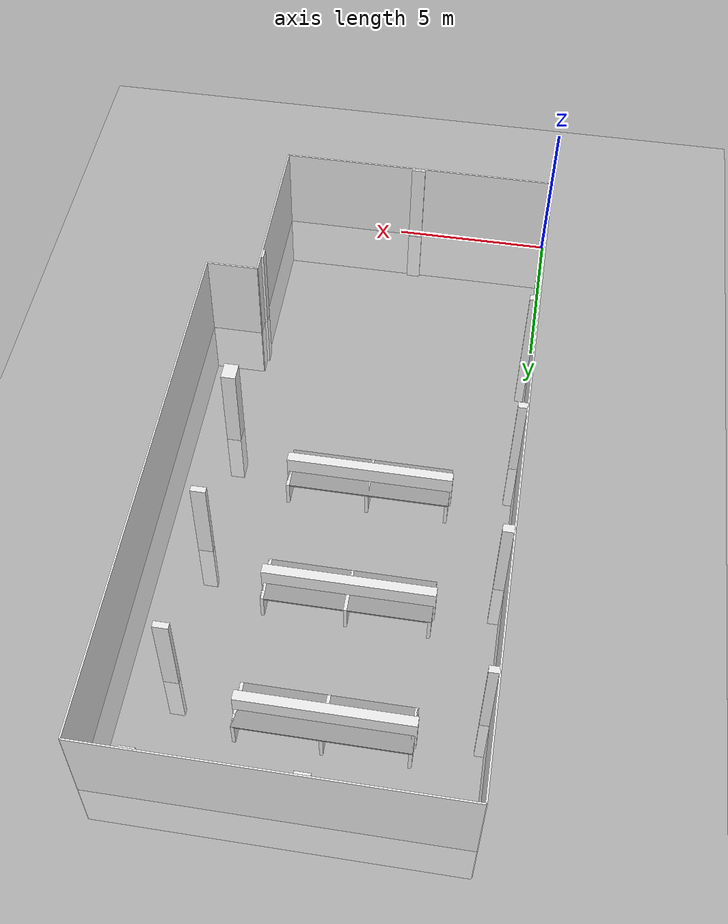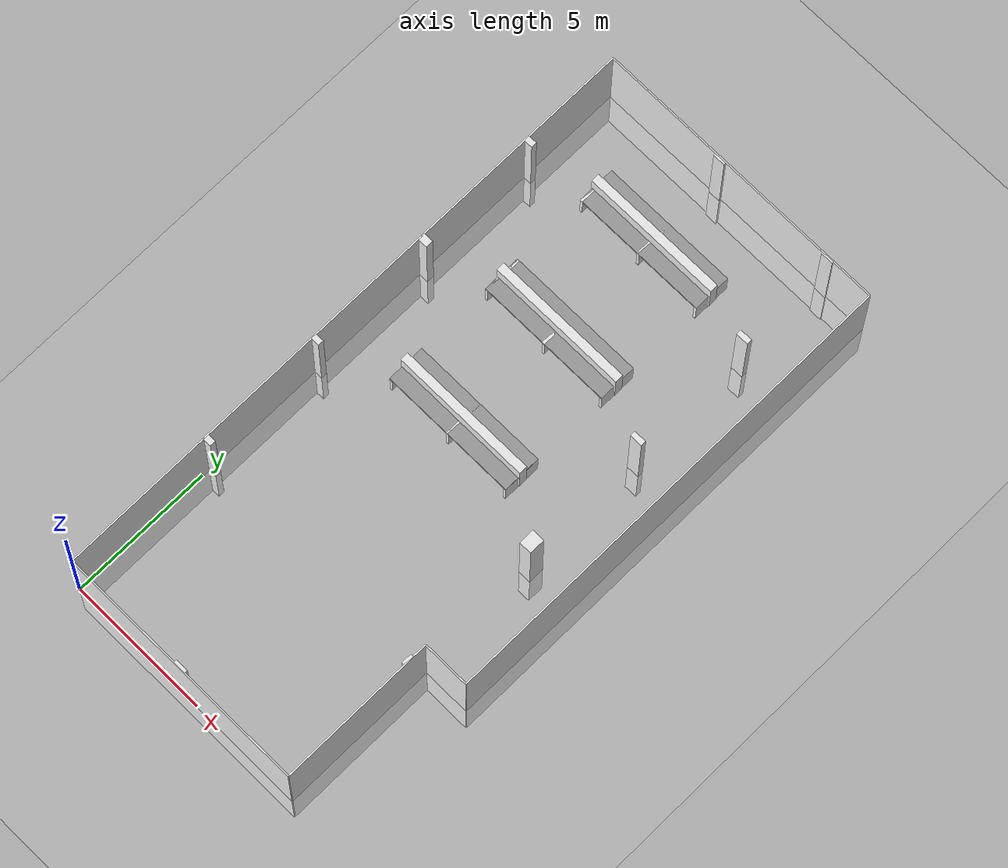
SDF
<sdf version="1.5">
 <world name="default">
  <physics name="default_physics" default="0" type="ode">
   <gravity>0 0 -9.8066</gravity>
   <ode>
    <solver>
     <type>quick</type>
     <iters>10</iters>
     <sor>1.3</sor>
     <use_dynamic_moi_rescaling>0</use_dynamic_moi_rescaling>
    </solver>
    <constraints>
     <cfm>0</cfm>
     <erp>0.2</erp>
     <contact_max_correcting_vel>1000</contact_max_correcting_vel>
     <contact_surface_layer>0.001</contact_surface_layer>
    </constraints>
   </ode>
   <max_step_size>0.004</max_step_size>
   <real_time_factor>1</real_time_factor>
   <real_time_update_rate>250</real_time_update_rate>
   <magnetic_field>6.0e-06 2.3e-05 -4.2e-05</magnetic_field>
  </physics>
  <GUI name="default_gri" default="0" type="ode"><grid>45 1.0 0 0.0150</grid></GUI>
  <scene><shadows>true</shadows></scene>
  <light name="sun" type="directional">
   <pose>0 0 10000 0.4 0.2 0</pose>
   <diffuse>1 1 1 1</diffuse>
   <specular>0.6 0.6 0.6 1</specular>
   <direction>0.1 0.1 -0.9</direction>
   <attenuation>
    <range>20</range>
    <constant>0.5</constant>
    <linear>0.01</linear>
    <quadratic>0.001</quadratic>
   </attenuation>
  </light>
  <include><uri>https://fuel.gazebosim.org/1.0/OpenRobotics/models/Ground Plane</uri></include>
  <model name="wall"><include><uri>model://wall-laser</uri></include></model>
  <model name="columns"><include><uri>model://columns-laser</uri></include></model>
  <model name="labBenchs"><include><uri>model://labBench-laser</uri></include></model>
 </world>
</sdf>

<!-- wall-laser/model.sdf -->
<sdf version="1.5">
    <model name="walls">
        <static>true</static>

        <link name="wall_900_hori">
            <pose>4.5 0 0.5 0 0 1.5707</pose>
            <static>true</static>
            <inertial>
                <mass>1.0</mass>
                <inertia>
                    <!-- inertias are tricky to compute -->
                    <ixx>1</ixx> <!-- for a box: ixx = 0.083 * mass * (y*y + z*z) -->
                    <ixy>0</ixy> <!-- for a box: ixy = 0 -->
                    <ixz>0</ixz> <!-- for a box: ixz = 0 -->
                    <iyy>1</iyy> <!-- for a box: iyy = 0.083 * mass * (x*x + z*z) -->
                    <iyz>0</iyz> <!-- for a box: iyz = 0 -->
                    <izz>1</izz> <!-- for a box: izz = 0.083 * mass * (x*x + y*y) -->
                </inertia>
            </inertial>
            <collision name="collision">
                <geometry>
                    <box>
                        <size>0.05 9 5</size>
                    </box>
                </geometry>
            </collision>
            <visual name="visual">
                <geometry>
                    <box>
                        <size>0.05 9 5</size>
                    </box>
                </geometry>
                <material>
                    <script>
                        <uri>file://media/materials/scripts/gazebo.material</uri>
                        <name>Gazebo/White</name>
                    </script>
                </material>
            </visual>
        </link>

        <link name="wall_550_verti">
            <pose>9 2.75 0.5 0 0 0</pose>
            <static>true</static>
            <inertial>
                <mass>1.0</mass>
                <inertia>
                    <!-- inertias are tricky to compute -->
                    <ixx>1</ixx> <!-- for a box: ixx = 0.083 * mass * (y*y + z*z) -->
                    <ixy>0</ixy> <!-- for a box: ixy = 0 -->
                    <ixz>0</ixz> <!-- for a box: ixz = 0 -->
                    <iyy>1</iyy> <!-- for a box: iyy = 0.083 * mass * (x*x + z*z) -->
                    <iyz>0</iyz> <!-- for a box: iyz = 0 -->
                    <izz>1</izz> <!-- for a box: izz = 0.083 * mass * (x*x + y*y) -->
                </inertia>
            </inertial>
            <collision name="collision">
                <geometry>
                    <box>
                        <size>0.05 5.5 5</size>
                    </box>
                </geometry>
            </collision>
            <visual name="visual">
                <geometry>
                    <box>
                        <size>0.05 5.5 5</size>
                    </box>
                </geometry>
                <material>
                    <script>
                        <uri>file://media/materials/scripts/gazebo.material</uri>
                        <name>Gazebo/White</name>
                    </script>
                </material>
            </visual>
        </link>

        <link name="wall_164_hori">
            <pose>9.8225 5.5 0.5 0 0 1.5707</pose>
            <static>true</static>
            <inertial>
                <mass>1.0</mass>
                <inertia>
                    <!-- inertias are tricky to compute -->
                    <ixx>1</ixx> <!-- for a box: ixx = 0.083 * mass * (y*y + z*z) -->
                    <ixy>0</ixy> <!-- for a box: ixy = 0 -->
                    <ixz>0</ixz> <!-- for a box: ixz = 0 -->
                    <iyy>1</iyy> <!-- for a box: iyy = 0.083 * mass * (x*x + z*z) -->
                    <iyz>0</iyz> <!-- for a box: iyz = 0 -->
                    <izz>1</izz> <!-- for a box: izz = 0.083 * mass * (x*x + y*y) -->
                </inertia>
            </inertial>
            <collision name="collision">
                <geometry>
                    <box>
                        <size>0.05 1.645 5</size>
                    </box>
                </geometry>
            </collision>
            <visual name="visual">
                <geometry>
                    <box>
                        <size>0.05 1.645 5</size>
                    </box>
                </geometry>
                <material>
                    <script>
                        <uri>file://media/materials/scripts/gazebo.material</uri>
                        <name>Gazebo/White</name>
                    </script>
                </material>
            </visual>
        </link>

        <link name="wall_1678_verti">
            <pose>10.645 13.8925 0.5 0 0 0</pose>
            <static>true</static>
            <inertial>
                <mass>1.0</mass>
                <inertia>
                    <!-- inertias are tricky to compute -->
                    <ixx>1</ixx> <!-- for a box: ixx = 0.083 * mass * (y*y + z*z) -->
                    <ixy>0</ixy> <!-- for a box: ixy = 0 -->
                    <ixz>0</ixz> <!-- for a box: ixz = 0 -->
                    <iyy>1</iyy> <!-- for a box: iyy = 0.083 * mass * (x*x + z*z) -->
                    <iyz>0</iyz> <!-- for a box: iyz = 0 -->
                    <izz>1</izz> <!-- for a box: izz = 0.083 * mass * (x*x + y*y) -->
                </inertia>
            </inertial>
            <collision name="collision">
                <geometry>
                    <box>
                        <size>0.05 16.785 5</size>
                    </box>
                </geometry>
            </collision>
            <visual name="visual">
                <geometry>
                    <box>
                        <size>0.05 16.785 5</size>
                    </box>
                </geometry>
                <material>
                    <script>
                        <uri>file://media/materials/scripts/gazebo.material</uri>
                        <name>Gazebo/White</name>
                    </script>
                </material>
            </visual>
        </link>

        <link name="wall_1064_hori">
            <pose>5.3225 22.285 0.5 0 0 1.5707</pose>
            <static>true</static>
            <inertial>
                <mass>1.0</mass>
                <inertia>
                    <!-- inertias are tricky to compute -->
                    <ixx>1</ixx> <!-- for a box: ixx = 0.083 * mass * (y*y + z*z) -->
                    <ixy>0</ixy> <!-- for a box: ixy = 0 -->
                    <ixz>0</ixz> <!-- for a box: ixz = 0 -->
                    <iyy>1</iyy> <!-- for a box: iyy = 0.083 * mass * (x*x + z*z) -->
                    <iyz>0</iyz> <!-- for a box: iyz = 0 -->
                    <izz>1</izz> <!-- for a box: izz = 0.083 * mass * (x*x + y*y) -->
                </inertia>
            </inertial>
            <collision name="collision">
                <geometry>
                    <box>
                        <size>0.05 10.645 5</size>
                    </box>
                </geometry>
            </collision>
            <visual name="visual">
                <geometry>
                    <box>
                        <size>0.05 10.645 5</size>
                    </box>
                </geometry>
                <material>
                    <script>
                        <uri>file://media/materials/scripts/gazebo.material</uri>
                        <name>Gazebo/White</name>
                    </script>
                </material>
            </visual>
        </link>

        <link name="wall_2228_verti">
            <pose>0 11.1425 0.5 0 0 0</pose>
            <static>true</static>
            <inertial>
                <mass>1.0</mass>
                <inertia>
                    <!-- inertias are tricky to compute -->
                    <ixx>1</ixx> <!-- for a box: ixx = 0.083 * mass * (y*y + z*z) -->
                    <ixy>0</ixy> <!-- for a box: ixy = 0 -->
                    <ixz>0</ixz> <!-- for a box: ixz = 0 -->
                    <iyy>1</iyy> <!-- for a box: iyy = 0.083 * mass * (x*x + z*z) -->
                    <iyz>0</iyz> <!-- for a box: iyz = 0 -->
                    <izz>1</izz> <!-- for a box: izz = 0.083 * mass * (x*x + y*y) -->
                </inertia>
            </inertial>
            <collision name="collision">
                <geometry>
                    <box>
                        <size>0.05 22.285 5</size>
                    </box>
                </geometry>
            </collision>
            <visual name="visual">
                <geometry>
                    <box>
                        <size>0.05 22.285 5</size>
                    </box>
                </geometry>
                <material>
                    <script>
                        <uri>file://media/materials/scripts/gazebo.material</uri>
                        <name>Gazebo/White</name>
                    </script>
                </material>
            </visual>
        </link>

    </model>
</sdf>

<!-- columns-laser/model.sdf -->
<sdf version="1.5">
    <model name="columns">
        <static>true</static>

        <link name="column_1_hori">
            <pose>4.5 0.055 0.5 0 0 1.5707</pose>
            <static>true</static>
            <inertial>
                <mass>1.0</mass>
                <inertia>
                    <!-- inertias are tricky to compute -->
                    <ixx>1</ixx> <!-- for a box: ixx = 0.083 * mass * (y*y + z*z) -->
                    <ixy>0</ixy> <!-- for a box: ixy = 0 -->
                    <ixz>0</ixz> <!-- for a box: ixz = 0 -->
                    <iyy>1</iyy> <!-- for a box: iyy = 0.083 * mass * (x*x + z*z) -->
                    <iyz>0</iyz> <!-- for a box: iyz = 0 -->
                    <izz>1</izz> <!-- for a box: izz = 0.083 * mass * (x*x + y*y) -->
                </inertia>
            </inertial>
            <collision name="collision">
                <geometry>
                    <box>
                        <size>0.11 0.45 5</size>
                    </box>
                </geometry>
            </collision>
            <visual name="visual">
                <geometry>
                    <box>
                        <size>0.11 0.45 5</size>
                    </box>
                </geometry>
                <material>
                    <script>
                        <uri>file://media/materials/scripts/gazebo.material</uri>
                        <name>Gazebo/White</name>
                    </script>
                </material>
            </visual>
        </link>

        <link name="column_2_verti">
            <pose>8.95 4.82 0.5 0 0 0</pose> <!-- corrigir posicao y -->
            <static>true</static>
            <inertial>
                <mass>1.0</mass>
                <inertia>
                    <!-- inertias are tricky to compute -->
                    <ixx>1</ixx> <!-- for a box: ixx = 0.083 * mass * (y*y + z*z) -->
                    <ixy>0</ixy> <!-- for a box: ixy = 0 -->
                    <ixz>0</ixz> <!-- for a box: ixz = 0 -->
                    <iyy>1</iyy> <!-- for a box: iyy = 0.083 * mass * (x*x + z*z) -->
                    <iyz>0</iyz> <!-- for a box: iyz = 0 -->
                    <izz>1</izz> <!-- for a box: izz = 0.083 * mass * (x*x + y*y) -->
                </inertia>
            </inertial>
            <collision name="collision">
                <geometry>
                    <box>
                        <size>0.1 0.36 5</size>
                    </box>
                </geometry>
            </collision>
            <visual name="visual">
                <geometry>
                    <box>
                        <size>0.1 0.36 5</size>
                    </box>
                </geometry>
                <material>
                    <script>
                        <uri>file://media/materials/scripts/gazebo.material</uri>
                        <name>Gazebo/White</name>
                    </script>
                </material>
            </visual>
        </link>

        <link name="column_3_hori">
            <pose>8.9425 22.25 0.5 0 0 1.5707</pose>
            <static>true</static>
            <inertial>
                <mass>1.0</mass>
                <inertia>
                    <!-- inertias are tricky to compute -->
                    <ixx>1</ixx> <!-- for a box: ixx = 0.083 * mass * (y*y + z*z) -->
                    <ixy>0</ixy> <!-- for a box: ixy = 0 -->
                    <ixz>0</ixz> <!-- for a box: ixz = 0 -->
                    <iyy>1</iyy> <!-- for a box: iyy = 0.083 * mass * (x*x + z*z) -->
                    <iyz>0</iyz> <!-- for a box: iyz = 0 -->
                    <izz>1</izz> <!-- for a box: izz = 0.083 * mass * (x*x + y*y) -->
                </inertia>
            </inertial>
            <collision name="collision">
                <geometry>
                    <box>
                        <size>0.07 0.445 5</size>
                    </box>
                </geometry>
            </collision>
            <visual name="visual">
                <geometry>
                    <box>
                        <size>0.07 0.445 5</size>
                    </box>
                </geometry>
                <material>
                    <script>
                        <uri>file://media/materials/scripts/gazebo.material</uri>
                        <name>Gazebo/White</name>
                    </script>
                </material>
            </visual>
        </link>

        <link name="column_4_hori">
            <pose>4.5225 22.235 0.5 0 0 1.5707</pose>
            <static>true</static>
            <inertial>
                <mass>1.0</mass>
                <inertia>
                    <!-- inertias are tricky to compute -->
                    <ixx>1</ixx> <!-- for a box: ixx = 0.083 * mass * (y*y + z*z) -->
                    <ixy>0</ixy> <!-- for a box: ixy = 0 -->
                    <ixz>0</ixz> <!-- for a box: ixz = 0 -->
                    <iyy>1</iyy> <!-- for a box: iyy = 0.083 * mass * (x*x + z*z) -->
                    <iyz>0</iyz> <!-- for a box: iyz = 0 -->
                    <izz>1</izz> <!-- for a box: izz = 0.083 * mass * (x*x + y*y) -->
                </inertia>
            </inertial>
            <collision name="collision">
                <geometry>
                    <box>
                        <size>0.1 0.435 5</size>
                    </box>
                </geometry>
            </collision>
            <visual name="visual">
                <geometry>
                    <box>
                        <size>0.1 0.435 5</size>
                    </box>
                </geometry>
                <material>
                    <script>
                        <uri>file://media/materials/scripts/gazebo.material</uri>
                        <name>Gazebo/White</name>
                    </script>
                </material>
            </visual>
        </link>

        <link name="column_8_verti">
            <pose>0.15 5.3645 0.5 0 0 0</pose>
            <static>true</static>
            <inertial>
                <mass>1.0</mass>
                <inertia>
                    <!-- inertias are tricky to compute -->
                    <ixx>1</ixx> <!-- for a box: ixx = 0.083 * mass * (y*y + z*z) -->
                    <ixy>0</ixy> <!-- for a box: ixy = 0 -->
                    <ixz>0</ixz> <!-- for a box: ixz = 0 -->
                    <iyy>1</iyy> <!-- for a box: iyy = 0.083 * mass * (x*x + z*z) -->
                    <iyz>0</iyz> <!-- for a box: iyz = 0 -->
                    <izz>1</izz> <!-- for a box: izz = 0.083 * mass * (x*x + y*y) -->
                </inertia>
            </inertial>
            <collision name="collision">
                <geometry>
                    <box>
                        <size>0.3 0.205 5</size>
                    </box>
                </geometry>
            </collision>
            <visual name="visual">
                <geometry>
                    <box>
                        <size>0.3 0.205 5</size>
                    </box>
                </geometry>
                <material>
                    <script>
                        <uri>file://media/materials/scripts/gazebo.material</uri>
                        <name>Gazebo/White</name>
                    </script>
                </material>
            </visual>
        </link>

        <link name="column_7_verti">
            <pose>0.15 9.764 0.5 0 0 0</pose>
            <static>true</static>
            <inertial>
                <mass>1.0</mass>
                <inertia>
                    <!-- inertias are tricky to compute -->
                    <ixx>1</ixx> <!-- for a box: ixx = 0.083 * mass * (y*y + z*z) -->
                    <ixy>0</ixy> <!-- for a box: ixy = 0 -->
                    <ixz>0</ixz> <!-- for a box: ixz = 0 -->
                    <iyy>1</iyy> <!-- for a box: iyy = 0.083 * mass * (x*x + z*z) -->
                    <iyz>0</iyz> <!-- for a box: iyz = 0 -->
                    <izz>1</izz> <!-- for a box: izz = 0.083 * mass * (x*x + y*y) -->
                </inertia>
            </inertial>
            <collision name="collision">
                <geometry>
                    <box>
                        <size>0.3 0.21 5</size>
                    </box>
                </geometry>
            </collision>
            <visual name="visual">
                <geometry>
                    <box>
                        <size>0.3 0.21 5</size>
                    </box>
                </geometry>
                <material>
                    <script>
                        <uri>file://media/materials/scripts/gazebo.material</uri>
                        <name>Gazebo/White</name>
                    </script>
                </material>
            </visual>
        </link>

        <link name="column_6_verti">
            <pose>0.175 14.202 0.5 0 0 0</pose>
            <static>true</static>
            <inertial>
                <mass>1.0</mass>
                <inertia>
                    <!-- inertias are tricky to compute -->
                    <ixx>1</ixx> <!-- for a box: ixx = 0.083 * mass * (y*y + z*z) -->
                    <ixy>0</ixy> <!-- for a box: ixy = 0 -->
                    <ixz>0</ixz> <!-- for a box: ixz = 0 -->
                    <iyy>1</iyy> <!-- for a box: iyy = 0.083 * mass * (x*x + z*z) -->
                    <iyz>0</iyz> <!-- for a box: iyz = 0 -->
                    <izz>1</izz> <!-- for a box: izz = 0.083 * mass * (x*x + y*y) -->
                </inertia>
            </inertial>
            <collision name="collision">
                <geometry>
                    <box>
                        <size>0.35 0.26 5</size>
                    </box>
                </geometry>
            </collision>
            <visual name="visual">
                <geometry>
                    <box>
                        <size>0.35 0.26 5</size>
                    </box>
                </geometry>
                <material>
                    <script>
                        <uri>file://media/materials/scripts/gazebo.material</uri>
                        <name>Gazebo/White</name>
                    </script>
                </material>
            </visual>
        </link>

        <link name="column_5_verti">
            <pose>0.1525 18.6245 0.5 0 0 0</pose>
            <static>true</static>
            <inertial>
                <mass>1.0</mass>
                <inertia>
                    <!-- inertias are tricky to compute -->
                    <ixx>1</ixx> <!-- for a box: ixx = 0.083 * mass * (y*y + z*z) -->
                    <ixy>0</ixy> <!-- for a box: ixy = 0 -->
                    <ixz>0</ixz> <!-- for a box: ixz = 0 -->
                    <iyy>1</iyy> <!-- for a box: iyy = 0.083 * mass * (x*x + z*z) -->
                    <iyz>0</iyz> <!-- for a box: iyz = 0 -->
                    <izz>1</izz> <!-- for a box: izz = 0.083 * mass * (x*x + y*y) -->
                </inertia>
            </inertial>
            <collision name="collision">
                <geometry>
                    <box>
                        <size>0.305 0.205 5</size>
                    </box>
                </geometry>
            </collision>
            <visual name="visual">
                <geometry>
                    <box>
                        <size>0.305 0.205 5</size>
                    </box>
                </geometry>
                <material>
                    <script>
                        <uri>file://media/materials/scripts/gazebo.material</uri>
                        <name>Gazebo/White</name>
                    </script>
                </material>
            </visual>
        </link>

        <link name="obj8">
            <pose>8.936 18.72 0.5 0 0 0</pose>
            <static>true</static>
            <inertial>
                <mass>1.0</mass>
                <inertia>
                    <!-- inertias are tricky to compute -->
                    <ixx>1</ixx> <!-- for a box: ixx = 0.083 * mass * (y*y + z*z) -->
                    <ixy>0</ixy> <!-- for a box: ixy = 0 -->
                    <ixz>0</ixz> <!-- for a box: ixz = 0 -->
                    <iyy>1</iyy> <!-- for a box: iyy = 0.083 * mass * (x*x + z*z) -->
                    <iyz>0</iyz> <!-- for a box: iyz = 0 -->
                    <izz>1</izz> <!-- for a box: izz = 0.083 * mass * (x*x + y*y) -->
                </inertia>
            </inertial>
            <collision name="collision">
                <geometry>
                    <box>
                        <size>0.45 0.19 5</size>
                    </box>
                </geometry>
            </collision>
            <visual name="visual">
                <geometry>
                    <box>
                        <size>0.45 0.19 5</size>
                    </box>
                </geometry>
                <material>
                    <script>
                        <uri>file://media/materials/scripts/gazebo.material</uri>
                        <name>Gazebo/White</name>
                    </script>
                </material>
            </visual>
        </link>

        <link name="obj9">
            <pose>8.936 14.275 0.5 0 0 0</pose>
            <static>true</static>
            <inertial>
                <mass>1.0</mass>
                <inertia>
                    <!-- inertias are tricky to compute -->
                    <ixx>1</ixx> <!-- for a box: ixx = 0.083 * mass * (y*y + z*z) -->
                    <ixy>0</ixy> <!-- for a box: ixy = 0 -->
                    <ixz>0</ixz> <!-- for a box: ixz = 0 -->
                    <iyy>1</iyy> <!-- for a box: iyy = 0.083 * mass * (x*x + z*z) -->
                    <iyz>0</iyz> <!-- for a box: iyz = 0 -->
                    <izz>1</izz> <!-- for a box: izz = 0.083 * mass * (x*x + y*y) -->
                </inertia>
            </inertial>
            <collision name="collision">
                <geometry>
                    <box>
                        <size>0.45 0.19 5</size>
                    </box>
                </geometry>
            </collision>
            <visual name="visual">
                <geometry>
                    <box>
                        <size>0.45 0.19 5</size>
                    </box>
                </geometry>
                <material>
                    <script>
                        <uri>file://media/materials/scripts/gazebo.material</uri>
                        <name>Gazebo/White</name>
                    </script>
                </material>
            </visual>
        </link>

        <link name="obj10">
            <pose>8.9695 9.8545 0.5 0 0 0</pose>
            <static>true</static>
            <inertial>
                <mass>1.0</mass>
                <inertia>
                    <!-- inertias are tricky to compute -->
                    <ixx>1</ixx> <!-- for a box: ixx = 0.083 * mass * (y*y + z*z) -->
                    <ixy>0</ixy> <!-- for a box: ixy = 0 -->
                    <ixz>0</ixz> <!-- for a box: ixz = 0 -->
                    <iyy>1</iyy> <!-- for a box: iyy = 0.083 * mass * (x*x + z*z) -->
                    <iyz>0</iyz> <!-- for a box: iyz = 0 -->
                    <izz>1</izz> <!-- for a box: izz = 0.083 * mass * (x*x + y*y) -->
                </inertia>
            </inertial>
            <collision name="collision">
                <geometry>
                    <box>
                        <size>0.445 0.545 5</size>
                    </box>
                </geometry>
            </collision>
            <visual name="visual">
                <geometry>
                    <box>
                        <size>0.445 0.545 5</size>
                    </box>
                </geometry>
                <material>
                    <script>
                        <uri>file://media/materials/scripts/gazebo.material</uri>
                        <name>Gazebo/White</name>
                    </script>
                </material>
            </visual>
        </link>
    </model>
</sdf>

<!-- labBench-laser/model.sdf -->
<sdf version="1.5">
    <model name="benchs">
        <static>true</static>

        <!-- obj12.1 -->
        <link name="white_hori_1">
            <pose>4.423 19.633 0.8 0 0 0</pose>
            <static>true</static>
            <inertial>
                <mass>1.0</mass>
                <inertia>
                    <!-- inertias are tricky to compute -->
                    <ixx>1</ixx> <!-- for a box: ixx = 0.083 * mass * (y*y + z*z) -->
                    <ixy>0</ixy> <!-- for a box: ixy = 0 -->
                    <ixz>0</ixz> <!-- for a box: ixz = 0 -->
                    <iyy>1</iyy> <!-- for a box: iyy = 0.083 * mass * (x*x + z*z) -->
                    <iyz>0</iyz> <!-- for a box: iyz = 0 -->
                    <izz>1</izz> <!-- for a box: izz = 0.083 * mass * (x*x + y*y) -->
                </inertia>
            </inertial>
            <collision name="collision">
                <geometry>
                    <box>
                        <size>5 0.3 1.3</size>
                    </box>
                </geometry>
            </collision>
            <visual name="visual">
                <geometry>
                    <box>
                        <size>5 0.3 1.3</size>
                    </box>
                </geometry>
                <material>
                    <script>
                        <uri>file://media/materials/scripts/gazebo.material</uri>
                        <name>Gazebo/White</name>
                    </script>
                </material>
            </visual>
        </link>

        <link name="grani_hori_1">
            <pose>4.423 19.633 0.875 0 0 0</pose>
            <static>true</static>
            <inertial>
                <mass>1.0</mass>
                <inertia>
                    <!-- inertias are tricky to compute -->
                    <ixx>1</ixx> <!-- for a box: ixx = 0.083 * mass * (y*y + z*z) -->
                    <ixy>0</ixy> <!-- for a box: ixy = 0 -->
                    <ixz>0</ixz> <!-- for a box: ixz = 0 -->
                    <iyy>1</iyy> <!-- for a box: iyy = 0.083 * mass * (x*x + z*z) -->
                    <iyz>0</iyz> <!-- for a box: iyz = 0 -->
                    <izz>1</izz> <!-- for a box: izz = 0.083 * mass * (x*x + y*y) -->
                </inertia>
            </inertial>
            <collision name="collision">
                <geometry>
                    <box>
                        <size>4.9 1.35 0.05</size>
                    </box>
                </geometry>
            </collision>
            <visual name="visual">
                <geometry>
                    <box>
                        <size>4.9 1.35 0.05</size>
                    </box>
                </geometry>
                <material>
                    <script>
                        <uri>file://media/materials/scripts/gazebo.material</uri>
                        <name>Gazebo/Grey</name>
                    </script>
                </material>
            </visual>
        </link>

        <link name="white_verti_1">
            <pose>2.023 19.633 0.45 0 0 0</pose>
            <static>true</static>
            <inertial>
                <mass>1.0</mass>
                <inertia>
                    <!-- inertias are tricky to compute -->
                    <ixx>1</ixx> <!-- for a box: ixx = 0.083 * mass * (y*y + z*z) -->
                    <ixy>0</ixy> <!-- for a box: ixy = 0 -->
                    <ixz>0</ixz> <!-- for a box: ixz = 0 -->
                    <iyy>1</iyy> <!-- for a box: iyy = 0.083 * mass * (x*x + z*z) -->
                    <iyz>0</iyz> <!-- for a box: iyz = 0 -->
                    <izz>1</izz> <!-- for a box: izz = 0.083 * mass * (x*x + y*y) -->
                </inertia>
            </inertial>
            <collision name="collision">
                <geometry>
                    <box>
                        <size>0.1 1.35 0.9</size>
                    </box>
                </geometry>
            </collision>
            <visual name="visual">
                <geometry>
                    <box>
                        <size>0.1 1.35 0.9</size>
                    </box>
                </geometry>
                <material>
                    <script>
                        <uri>file://media/materials/scripts/gazebo.material</uri>
                        <name>Gazebo/White</name>
                    </script>
                </material>
            </visual>
        </link>

        <link name="white_verti_2">
            <pose>4.423 19.633 0.45 0 0 0</pose>
            <static>true</static>
            <inertial>
                <mass>1.0</mass>
                <inertia>
                    <!-- inertias are tricky to compute -->
                    <ixx>1</ixx> <!-- for a box: ixx = 0.083 * mass * (y*y + z*z) -->
                    <ixy>0</ixy> <!-- for a box: ixy = 0 -->
                    <ixz>0</ixz> <!-- for a box: ixz = 0 -->
                    <iyy>1</iyy> <!-- for a box: iyy = 0.083 * mass * (x*x + z*z) -->
                    <iyz>0</iyz> <!-- for a box: iyz = 0 -->
                    <izz>1</izz> <!-- for a box: izz = 0.083 * mass * (x*x + y*y) -->
                </inertia>
            </inertial>
            <collision name="collision">
                <geometry>
                    <box>
                        <size>0.1 1.35 0.9</size>
                    </box>
                </geometry>
            </collision>
            <visual name="visual">
                <geometry>
                    <box>
                        <size>0.1 1.35 0.9</size>
                    </box>
                </geometry>
                <material>
                    <script>
                        <uri>file://media/materials/scripts/gazebo.material</uri>
                        <name>Gazebo/White</name>
                    </script>
                </material>
            </visual>
        </link>

        <link name="white_verti_3">
            <pose>6.823 19.633 0.45 0 0 0</pose>
            <static>true</static>
            <inertial>
                <mass>1.0</mass>
                <inertia>
                    <!-- inertias are tricky to compute -->
                    <ixx>1</ixx> <!-- for a box: ixx = 0.083 * mass * (y*y + z*z) -->
                    <ixy>0</ixy> <!-- for a box: ixy = 0 -->
                    <ixz>0</ixz> <!-- for a box: ixz = 0 -->
                    <iyy>1</iyy> <!-- for a box: iyy = 0.083 * mass * (x*x + z*z) -->
                    <iyz>0</iyz> <!-- for a box: iyz = 0 -->
                    <izz>1</izz> <!-- for a box: izz = 0.083 * mass * (x*x + y*y) -->
                </inertia>
            </inertial>
            <collision name="collision">
                <geometry>
                    <box>
                        <size>0.1 1.35 0.9</size>
                    </box>
                </geometry>
            </collision>
            <visual name="visual">
                <geometry>
                    <box>
                        <size>0.1 1.35 0.9</size>
                    </box>
                </geometry>
                <material>
                    <script>
                        <uri>file://media/materials/scripts/gazebo.material</uri>
                        <name>Gazebo/White</name>
                    </script>
                </material>
            </visual>
        </link>

        <!-- obj12.2 -->
        <link name="white_hori_2">
            <pose>4.423 15.603 0.8 0 0 0</pose>
            <static>true</static>
            <inertial>
                <mass>1.0</mass>
                <inertia>
                    <!-- inertias are tricky to compute -->
                    <ixx>1</ixx> <!-- for a box: ixx = 0.083 * mass * (y*y + z*z) -->
                    <ixy>0</ixy> <!-- for a box: ixy = 0 -->
                    <ixz>0</ixz> <!-- for a box: ixz = 0 -->
                    <iyy>1</iyy> <!-- for a box: iyy = 0.083 * mass * (x*x + z*z) -->
                    <iyz>0</iyz> <!-- for a box: iyz = 0 -->
                    <izz>1</izz> <!-- for a box: izz = 0.083 * mass * (x*x + y*y) -->
                </inertia>
            </inertial>
            <collision name="collision">
                <geometry>
                    <box>
                        <size>5 0.3 1.3</size>
                    </box>
                </geometry>
            </collision>
            <visual name="visual">
                <geometry>
                    <box>
                        <size>5 0.3 1.3</size>
                    </box>
                </geometry>
                <material>
                    <script>
                        <uri>file://media/materials/scripts/gazebo.material</uri>
                        <name>Gazebo/White</name>
                    </script>
                </material>
            </visual>
        </link>

        <link name="grani_hori_2">
            <pose>4.423 15.603 0.875 0 0 0</pose>
            <static>true</static>
            <inertial>
                <mass>1.0</mass>
                <inertia>
                    <!-- inertias are tricky to compute -->
                    <ixx>1</ixx> <!-- for a box: ixx = 0.083 * mass * (y*y + z*z) -->
                    <ixy>0</ixy> <!-- for a box: ixy = 0 -->
                    <ixz>0</ixz> <!-- for a box: ixz = 0 -->
                    <iyy>1</iyy> <!-- for a box: iyy = 0.083 * mass * (x*x + z*z) -->
                    <iyz>0</iyz> <!-- for a box: iyz = 0 -->
                    <izz>1</izz> <!-- for a box: izz = 0.083 * mass * (x*x + y*y) -->
                </inertia>
            </inertial>
            <collision name="collision">
                <geometry>
                    <box>
                        <size>4.9 1.35 0.05</size>
                    </box>
                </geometry>
            </collision>
            <visual name="visual">
                <geometry>
                    <box>
                        <size>4.9 1.35 0.05</size>
                    </box>
                </geometry>
                <material>
                    <script>
                        <uri>file://media/materials/scripts/gazebo.material</uri>
                        <name>Gazebo/Grey</name>
                    </script>
                </material>
            </visual>
        </link>

        <link name="white_verti_4">
            <pose>2.023 15.603 0.45 0 0 0</pose>
            <static>true</static>
            <inertial>
                <mass>1.0</mass>
                <inertia>
                    <!-- inertias are tricky to compute -->
                    <ixx>1</ixx> <!-- for a box: ixx = 0.083 * mass * (y*y + z*z) -->
                    <ixy>0</ixy> <!-- for a box: ixy = 0 -->
                    <ixz>0</ixz> <!-- for a box: ixz = 0 -->
                    <iyy>1</iyy> <!-- for a box: iyy = 0.083 * mass * (x*x + z*z) -->
                    <iyz>0</iyz> <!-- for a box: iyz = 0 -->
                    <izz>1</izz> <!-- for a box: izz = 0.083 * mass * (x*x + y*y) -->
                </inertia>
            </inertial>
            <collision name="collision">
                <geometry>
                    <box>
                        <size>0.1 1.35 0.9</size>
                    </box>
                </geometry>
            </collision>
            <visual name="visual">
                <geometry>
                    <box>
                        <size>0.1 1.35 0.9</size>
                    </box>
                </geometry>
                <material>
                    <script>
                        <uri>file://media/materials/scripts/gazebo.material</uri>
                        <name>Gazebo/White</name>
                    </script>
                </material>
            </visual>
        </link>

        <link name="white_verti_5">
            <pose>4.423 15.603 0.45 0 0 0</pose>
            <static>true</static>
            <inertial>
                <mass>1.0</mass>
                <inertia>
                    <!-- inertias are tricky to compute -->
                    <ixx>1</ixx> <!-- for a box: ixx = 0.083 * mass * (y*y + z*z) -->
                    <ixy>0</ixy> <!-- for a box: ixy = 0 -->
                    <ixz>0</ixz> <!-- for a box: ixz = 0 -->
                    <iyy>1</iyy> <!-- for a box: iyy = 0.083 * mass * (x*x + z*z) -->
                    <iyz>0</iyz> <!-- for a box: iyz = 0 -->
                    <izz>1</izz> <!-- for a box: izz = 0.083 * mass * (x*x + y*y) -->
                </inertia>
            </inertial>
            <collision name="collision">
                <geometry>
                    <box>
                        <size>0.1 1.35 0.9</size>
                    </box>
                </geometry>
            </collision>
            <visual name="visual">
                <geometry>
                    <box>
                        <size>0.1 1.35 0.9</size>
                    </box>
                </geometry>
                <material>
                    <script>
                        <uri>file://media/materials/scripts/gazebo.material</uri>
                        <name>Gazebo/White</name>
                    </script>
                </material>
            </visual>
        </link>

        <link name="white_verti_6">
            <pose>6.823 15.603 0.45 0 0 0</pose>
            <static>true</static>
            <inertial>
                <mass>1.0</mass>
                <inertia>
                    <!-- inertias are tricky to compute -->
                    <ixx>1</ixx> <!-- for a box: ixx = 0.083 * mass * (y*y + z*z) -->
                    <ixy>0</ixy> <!-- for a box: ixy = 0 -->
                    <ixz>0</ixz> <!-- for a box: ixz = 0 -->
                    <iyy>1</iyy> <!-- for a box: iyy = 0.083 * mass * (x*x + z*z) -->
                    <iyz>0</iyz> <!-- for a box: iyz = 0 -->
                    <izz>1</izz> <!-- for a box: izz = 0.083 * mass * (x*x + y*y) -->
                </inertia>
            </inertial>
            <collision name="collision">
                <geometry>
                    <box>
                        <size>0.1 1.35 0.9</size>
                    </box>
                </geometry>
            </collision>
            <visual name="visual">
                <geometry>
                    <box>
                        <size>0.1 1.35 0.9</size>
                    </box>
                </geometry>
                <material>
                    <script>
                        <uri>file://media/materials/scripts/gazebo.material</uri>
                        <name>Gazebo/White</name>
                    </script>
                </material>
            </visual>
        </link>

        <!-- obj12.3 -->
        <link name="white_hori_3">
            <pose>4.423 11.573 0.8 0 0 0</pose>
            <static>true</static>
            <inertial>
                <mass>1.0</mass>
                <inertia>
                    <!-- inertias are tricky to compute -->
                    <ixx>1</ixx> <!-- for a box: ixx = 0.083 * mass * (y*y + z*z) -->
                    <ixy>0</ixy> <!-- for a box: ixy = 0 -->
                    <ixz>0</ixz> <!-- for a box: ixz = 0 -->
                    <iyy>1</iyy> <!-- for a box: iyy = 0.083 * mass * (x*x + z*z) -->
                    <iyz>0</iyz> <!-- for a box: iyz = 0 -->
                    <izz>1</izz> <!-- for a box: izz = 0.083 * mass * (x*x + y*y) -->
                </inertia>
            </inertial>
            <collision name="collision">
                <geometry>
                    <box>
                        <size>5 0.3 1.3</size>
                    </box>
                </geometry>
            </collision>
            <visual name="visual">
                <geometry>
                    <box>
                        <size>5 0.3 1.3</size>
                    </box>
                </geometry>
                <material>
                    <script>
                        <uri>file://media/materials/scripts/gazebo.material</uri>
                        <name>Gazebo/White</name>
                    </script>
                </material>
            </visual>
        </link>

        <link name="grani_hori_3">
            <pose>4.423 11.573 0.875 0 0 0</pose>
            <static>true</static>
            <inertial>
                <mass>1.0</mass>
                <inertia>
                    <!-- inertias are tricky to compute -->
                    <ixx>1</ixx> <!-- for a box: ixx = 0.083 * mass * (y*y + z*z) -->
                    <ixy>0</ixy> <!-- for a box: ixy = 0 -->
                    <ixz>0</ixz> <!-- for a box: ixz = 0 -->
                    <iyy>1</iyy> <!-- for a box: iyy = 0.083 * mass * (x*x + z*z) -->
                    <iyz>0</iyz> <!-- for a box: iyz = 0 -->
                    <izz>1</izz> <!-- for a box: izz = 0.083 * mass * (x*x + y*y) -->
                </inertia>
            </inertial>
            <collision name="collision">
                <geometry>
                    <box>
                        <size>4.9 1.35 0.05</size>
                    </box>
                </geometry>
            </collision>
            <visual name="visual">
                <geometry>
                    <box>
                        <size>4.9 1.35 0.05</size>
                    </box>
                </geometry>
                <material>
                    <script>
                        <uri>file://media/materials/scripts/gazebo.material</uri>
                        <name>Gazebo/Grey</name>
                    </script>
                </material>
            </visual>
        </link>

        <link name="white_verti_7">
            <pose>2.023 11.573 0.45 0 0 0</pose>
            <static>true</static>
            <inertial>
                <mass>1.0</mass>
                <inertia>
                    <!-- inertias are tricky to compute -->
                    <ixx>1</ixx> <!-- for a box: ixx = 0.083 * mass * (y*y + z*z) -->
                    <ixy>0</ixy> <!-- for a box: ixy = 0 -->
                    <ixz>0</ixz> <!-- for a box: ixz = 0 -->
                    <iyy>1</iyy> <!-- for a box: iyy = 0.083 * mass * (x*x + z*z) -->
                    <iyz>0</iyz> <!-- for a box: iyz = 0 -->
                    <izz>1</izz> <!-- for a box: izz = 0.083 * mass * (x*x + y*y) -->
                </inertia>
            </inertial>
            <collision name="collision">
                <geometry>
                    <box>
                        <size>0.1 1.35 0.9</size>
                    </box>
                </geometry>
            </collision>
            <visual name="visual">
                <geometry>
                    <box>
                        <size>0.1 1.35 0.9</size>
                    </box>
                </geometry>
                <material>
                    <script>
                        <uri>file://media/materials/scripts/gazebo.material</uri>
                        <name>Gazebo/White</name>
                    </script>
                </material>
            </visual>
        </link>

        <link name="white_verti_8">
            <pose>4.423 11.573 0.45 0 0 0</pose>
            <static>true</static>
            <inertial>
                <mass>1.0</mass>
                <inertia>
                    <!-- inertias are tricky to compute -->
                    <ixx>1</ixx> <!-- for a box: ixx = 0.083 * mass * (y*y + z*z) -->
                    <ixy>0</ixy> <!-- for a box: ixy = 0 -->
                    <ixz>0</ixz> <!-- for a box: ixz = 0 -->
                    <iyy>1</iyy> <!-- for a box: iyy = 0.083 * mass * (x*x + z*z) -->
                    <iyz>0</iyz> <!-- for a box: iyz = 0 -->
                    <izz>1</izz> <!-- for a box: izz = 0.083 * mass * (x*x + y*y) -->
                </inertia>
            </inertial>
            <collision name="collision">
                <geometry>
                    <box>
                        <size>0.1 1.35 0.9</size>
                    </box>
                </geometry>
            </collision>
            <visual name="visual">
                <geometry>
                    <box>
                        <size>0.1 1.35 0.9</size>
                    </box>
                </geometry>
                <material>
                    <script>
                        <uri>file://media/materials/scripts/gazebo.material</uri>
                        <name>Gazebo/White</name>
                    </script>
                </material>
            </visual>
        </link>

        <link name="white_verti_9">
            <pose>6.823 11.573 0.45 0 0 0</pose>
            <static>true</static>
            <inertial>
                <mass>1.0</mass>
                <inertia>
                    <!-- inertias are tricky to compute -->
                    <ixx>1</ixx> <!-- for a box: ixx = 0.083 * mass * (y*y + z*z) -->
                    <ixy>0</ixy> <!-- for a box: ixy = 0 -->
                    <ixz>0</ixz> <!-- for a box: ixz = 0 -->
                    <iyy>1</iyy> <!-- for a box: iyy = 0.083 * mass * (x*x + z*z) -->
                    <iyz>0</iyz> <!-- for a box: iyz = 0 -->
                    <izz>1</izz> <!-- for a box: izz = 0.083 * mass * (x*x + y*y) -->
                </inertia>
            </inertial>
            <collision name="collision">
                <geometry>
                    <box>
                        <size>0.1 1.35 0.9</size>
                    </box>
                </geometry>
            </collision>
            <visual name="visual">
                <geometry>
                    <box>
                        <size>0.1 1.35 0.9</size>
                    </box>
                </geometry>
                <material>
                    <script>
                        <uri>file://media/materials/scripts/gazebo.material</uri>
                        <name>Gazebo/White</name>
                    </script>
                </material>
            </visual>
        </link>

    </model>
</sdf>
